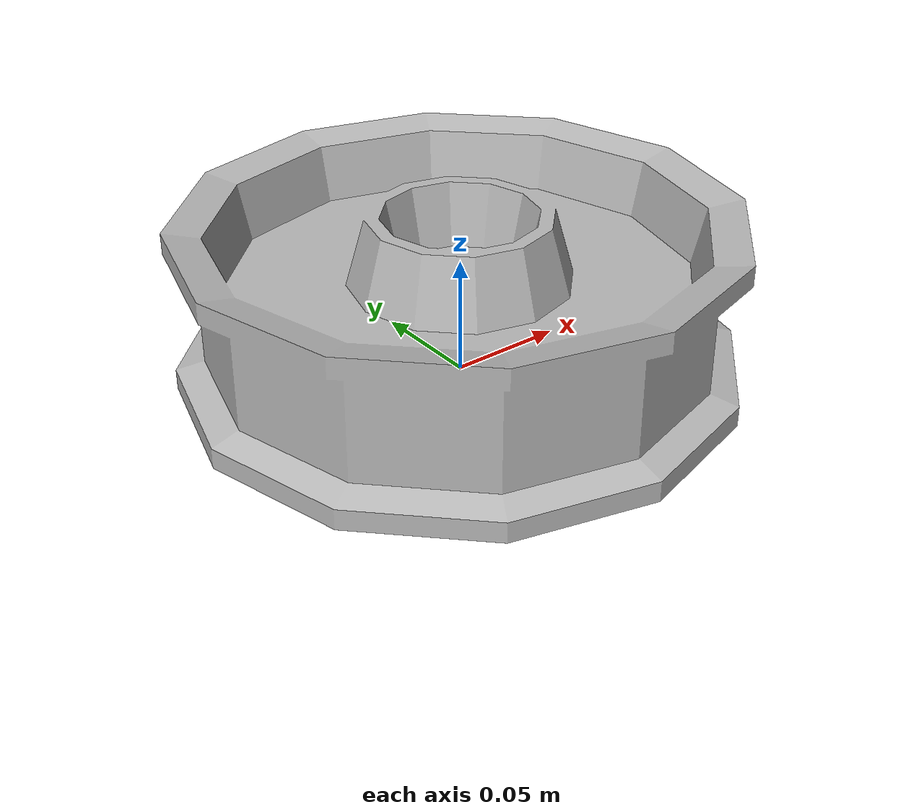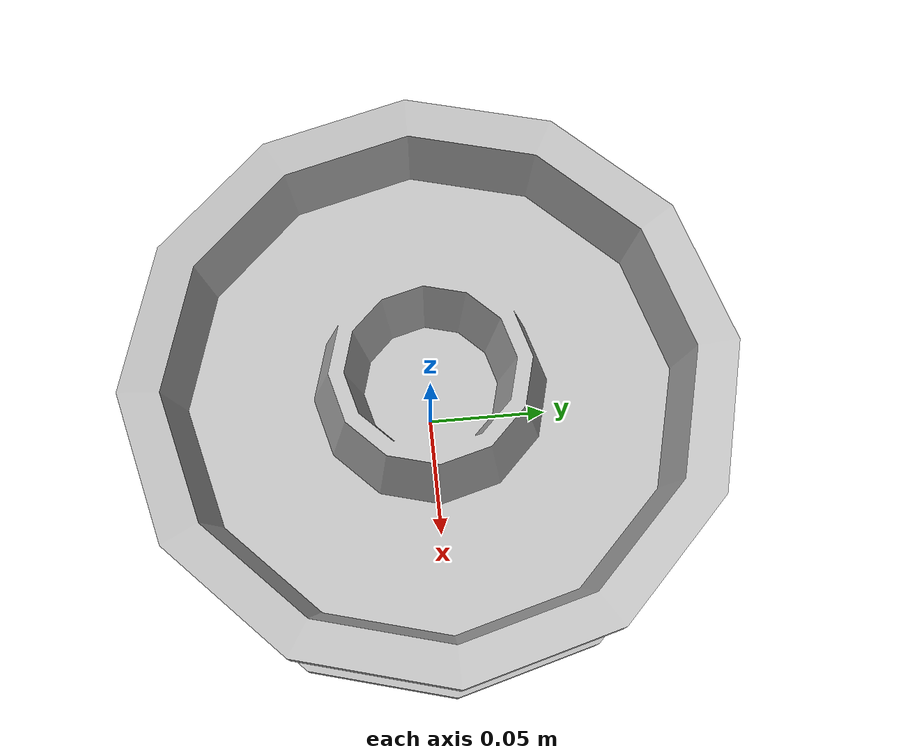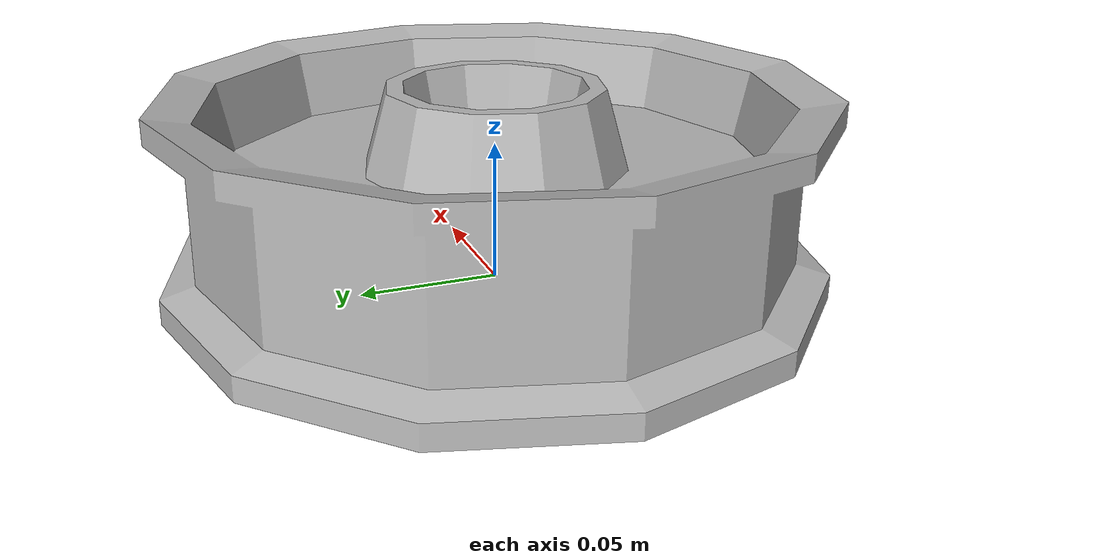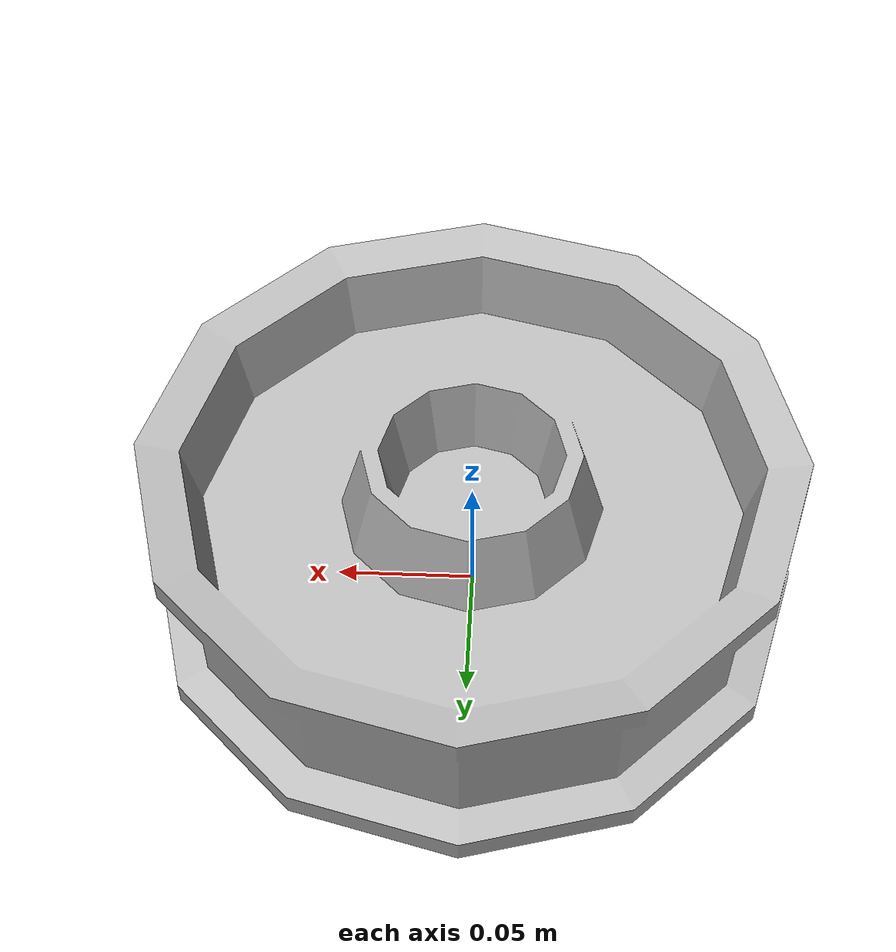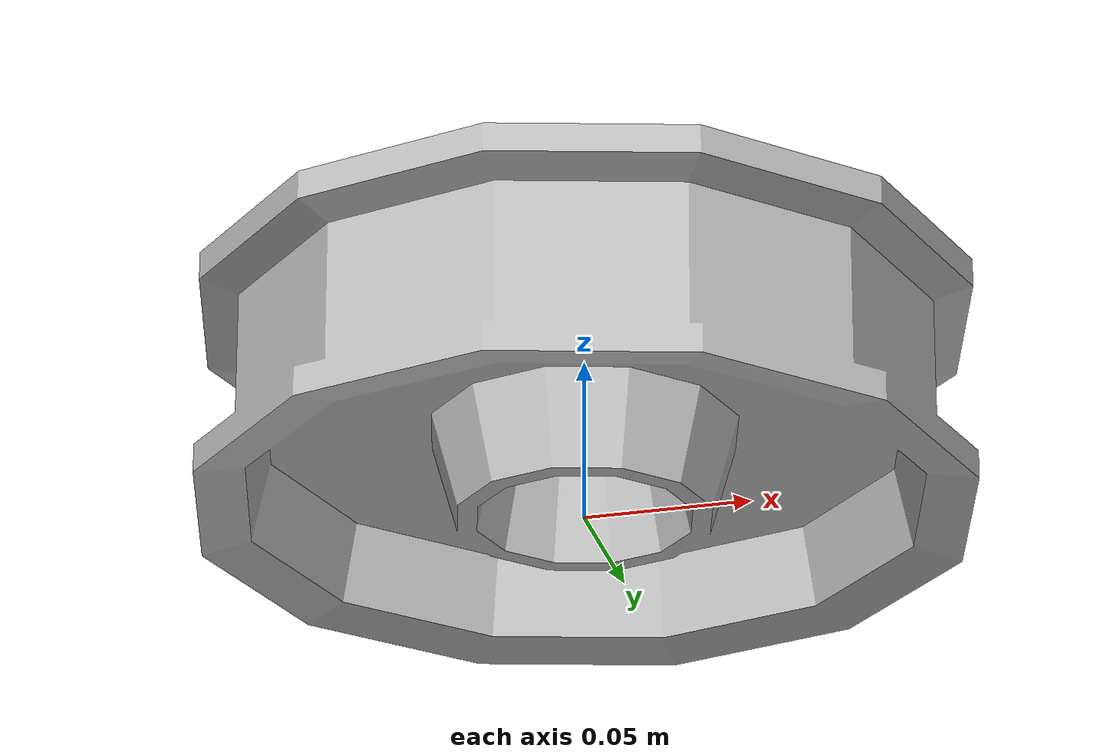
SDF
<?xml version="1.0" ?>
<sdf version="1.6">
  <model name="pulley_part">
    <link name="link">
      <inertial>
        <pose>0 0 0.035145 0 0 0</pose>
        <mass>0.5</mass>
        <inertia>
          <ixx>0.00191581703</ixx>
          <ixy>0</ixy>
          <ixz>0</ixz>
          <iyy>0.00191581703</iyy>
          <iyz>0</iyz>
          <izz>0.0034199104</izz>
        </inertia>
      </inertial>

      <collision name="collision">
        <pose>0 0 0.035145 0 0 0</pose>
        <geometry>
          <cylinder>
            <radius>0.11696</radius>
            <length>0.07029</length>
          </cylinder>
        </geometry>
      </collision>

      <visual name="visual">
         <geometry>
           <mesh>
             <uri>model://pulley_part/meshes/pulley.dae</uri>
           </mesh>
         </geometry>
        <material>
          <script>
            <uri>model://arm_part/materials/scripts</uri>
            <uri>model://arm_part/materials/textures</uri>
            <name>ArmPart/Diffuse</name>
          </script>
        </material>
       </visual>
    </link>
  </model>
</sdf>
